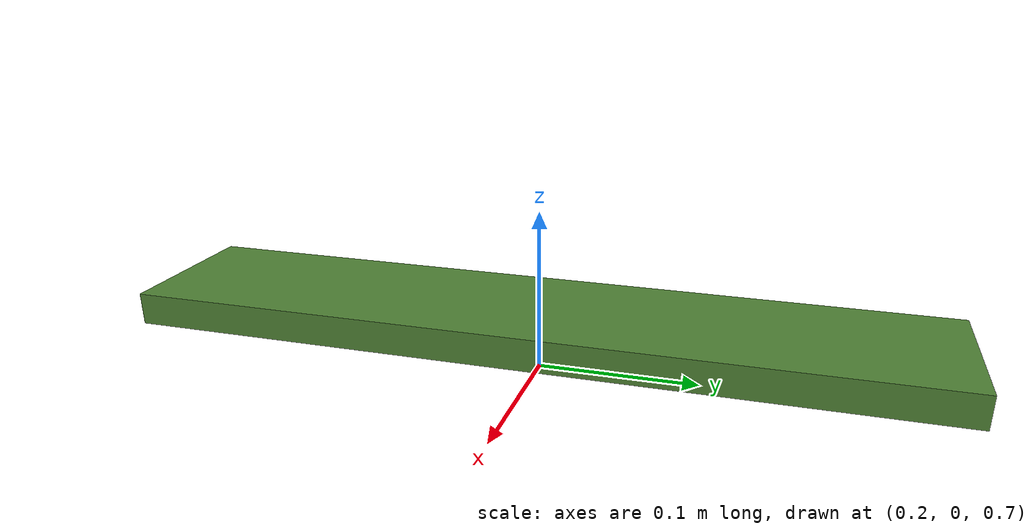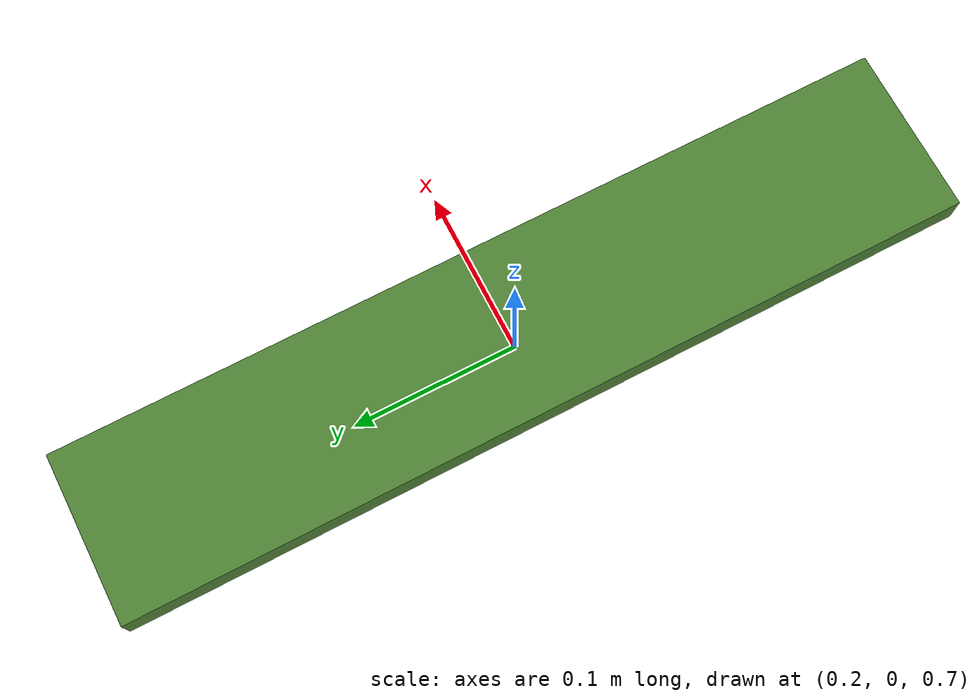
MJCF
<mujoco model="SittingField">
  <compiler angle="radian" autolimits="true"/>
  <option noslip_iterations="50" noslip_tolerance="1e-10"/>

  <asset>
    <hfield name="sitting_hfield" file="/home/mmurooka/ros/ws_bwc/src/isri-aist/MultiContactController/mujoco/model/sitting_hfield.png"
            size="0.05 0.25 0.005 0.01"/>
  </asset>

  <worldbody>
    <geom type="box" rgba="0.3 0.5 0.2 1"
          condim="3" group="1" density="0"
          size="0.05 0.25 0.01" pos="0.2 0 0.73"
          />
          <!-- euler="0 0.06 0" -->

    <!--       condim="3" group="1" density="0" -->
    <!--       pos="0.2 0 0.74" -->
  </worldbody>

</mujoco>
